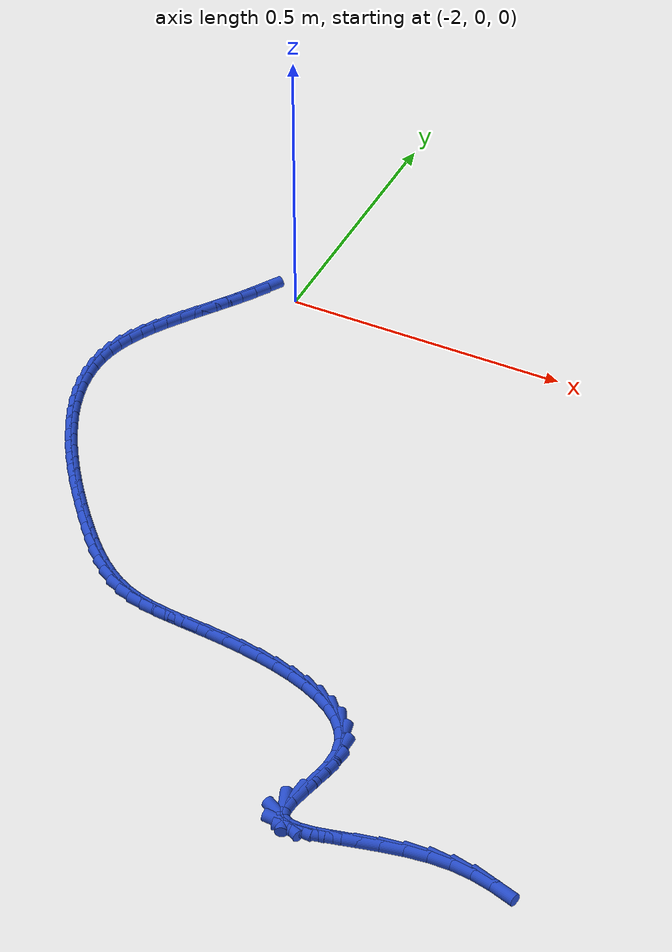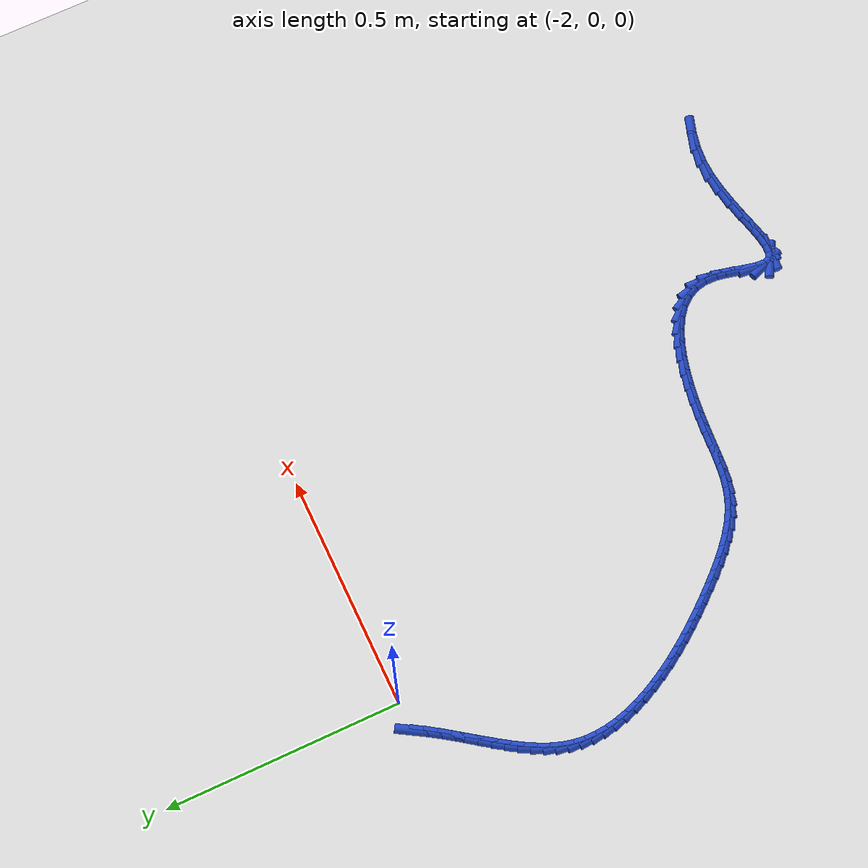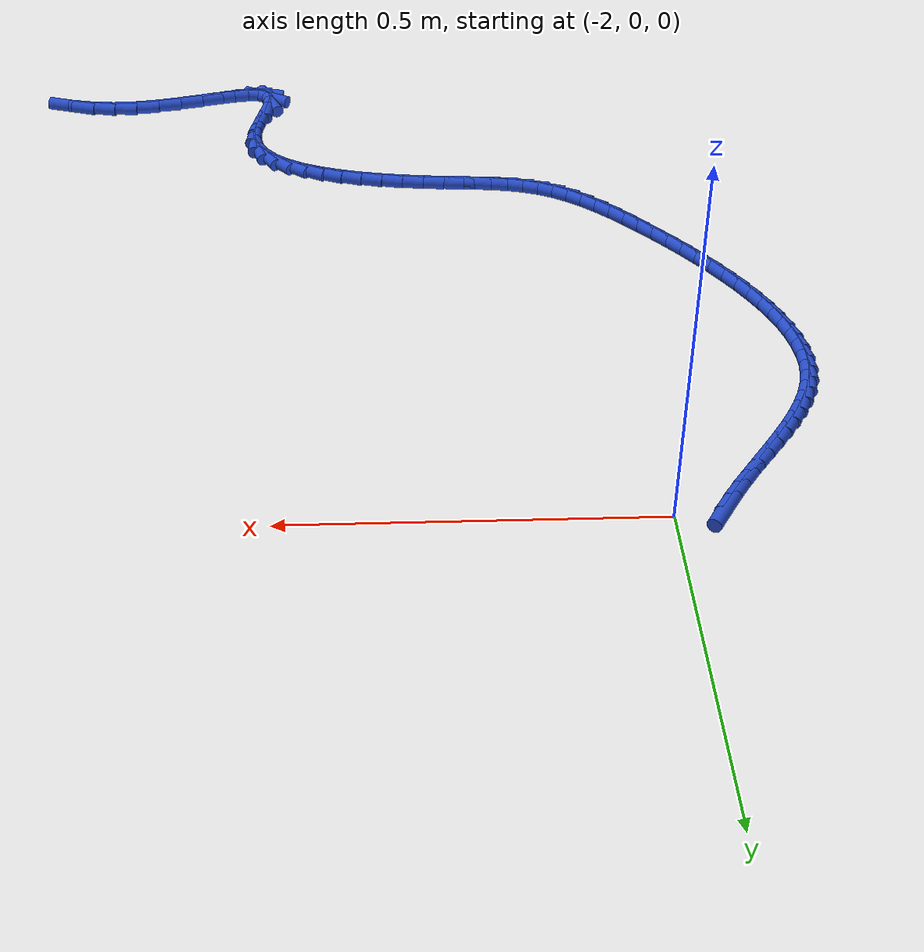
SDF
<sdf version="1.6">
 <world name="default">
  <model name="ground_plane">
   <static>1</static>
   <link name="link">
    <collision name="collision">
     <geometry><plane><normal>0 0 1</normal><size>100 100</size></plane></geometry>
     <surface><friction><ode><mu>100</mu><mu2>50</mu2></ode></friction></surface>
    </collision>
    <visual name="visual">
     <cast_shadows>0</cast_shadows>
     <geometry><plane><normal>0 0 1</normal><size>100 100</size></plane></geometry>
     <material>
      <script><uri>file://media/materials/scripts/gazebo.material</uri><name>Gazebo/WhiteGlow</name></script>
     </material>
    </visual>
   </link>
  </model>
  <model name="line">
   <link name="link_141">
    <pose>-2.0645207721327044 -0.004712723745425298 0.01 0 1.57 1.0263137775389735</pose>
    <collision name="collision">
     <geometry><cylinder><radius>0.01</radius><length>0.08</length></cylinder></geometry>
    </collision>
    <visual name="visual">
     <material>
      <script><name>Gazebo/Blue</name><uri>file://media/materials/scripts/gazebo.material</uri></script>
     </material>
     <geometry><cylinder><radius>0.01</radius><length>0.08</length></cylinder></geometry>
    </visual>
   </link>
   <link name="link_142">
    <pose>-2.0790939731737152 -0.028779207126630856 0.01 0 1.57 0.9900091788965728</pose>
    <collision name="collision">
     <geometry><cylinder><radius>0.01</radius><length>0.08</length></cylinder></geometry>
    </collision>
    <visual name="visual">
     <material>
      <script><name>Gazebo/Blue</name><uri>file://media/materials/scripts/gazebo.material</uri></script>
     </material>
     <geometry><cylinder><radius>0.01</radius><length>0.08</length></cylinder></geometry>
    </visual>
   </link>
   <link name="link_143">
    <pose>-2.09451189204711 -0.05227160158531137 0.01 0 1.57 0.9653043991538459</pose>
    <collision name="collision">
     <geometry><cylinder><radius>0.01</radius><length>0.08</length></cylinder></geometry>
    </collision>
    <visual name="visual">
     <material>
      <script><name>Gazebo/Blue</name><uri>file://media/materials/scripts/gazebo.material</uri></script>
     </material>
     <geometry><cylinder><radius>0.01</radius><length>0.08</length></cylinder></geometry>
    </visual>
   </link>
   <link name="link_144">
    <pose>-2.1104434789408644 -0.0752864870725746 0.01 0 1.57 0.9520963504807047</pose>
    <collision name="collision">
     <geometry><cylinder><radius>0.01</radius><length>0.08</length></cylinder></geometry>
    </collision>
    <visual name="visual">
     <material>
      <script><name>Gazebo/Blue</name><uri>file://media/materials/scripts/gazebo.material</uri></script>
     </material>
     <geometry><cylinder><radius>0.01</radius><length>0.08</length></cylinder></geometry>
    </visual>
   </link>
   <link name="link_145">
    <pose>-2.126557684042955 -0.09792044353952824 0.01 0 1.57 0.9504944550691583</pose>
    <collision name="collision">
     <geometry><cylinder><radius>0.01</radius><length>0.08</length></cylinder></geometry>
    </collision>
    <visual name="visual">
     <material>
      <script><name>Gazebo/Blue</name><uri>file://media/materials/scripts/gazebo.material</uri></script>
     </material>
     <geometry><cylinder><radius>0.01</radius><length>0.08</length></cylinder></geometry>
    </visual>
   </link>
   <link name="link_146">
    <pose>-2.1425234575413574 -0.12027005093728073 0.01 0 1.57 0.9608883282410815</pose>
    <collision name="collision">
     <geometry><cylinder><radius>0.01</radius><length>0.08</length></cylinder></geometry>
    </collision>
    <visual name="visual">
     <material>
      <script><name>Gazebo/Blue</name><uri>file://media/materials/scripts/gazebo.material</uri></script>
     </material>
     <geometry><cylinder><radius>0.01</radius><length>0.08</length></cylinder></geometry>
    </visual>
   </link>
   <link name="link_147">
    <pose>-2.1580097496240467 -0.1424318892169384 0.01 0 1.57 0.9839868110194508</pose>
    <collision name="collision">
     <geometry><cylinder><radius>0.01</radius><length>0.08</length></cylinder></geometry>
    </collision>
    <visual name="visual">
     <material>
      <script><name>Gazebo/Blue</name><uri>file://media/materials/scripts/gazebo.material</uri></script>
     </material>
     <geometry><cylinder><radius>0.01</radius><length>0.08</length></cylinder></geometry>
    </visual>
   </link>
   <link name="link_148">
    <pose>-2.1726855104790004 -0.16450253832960968 0.01 0 1.57 1.0208211946546906</pose>
    <collision name="collision">
     <geometry><cylinder><radius>0.01</radius><length>0.08</length></cylinder></geometry>
    </collision>
    <visual name="visual">
     <material>
      <script><name>Gazebo/Blue</name><uri>file://media/materials/scripts/gazebo.material</uri></script>
     </material>
     <geometry><cylinder><radius>0.01</radius><length>0.08</length></cylinder></geometry>
    </visual>
   </link>
   <link name="link_149">
    <pose>-2.1862196902941937 -0.1865785782264023 0.01 0 1.57 1.0726857452094924</pose>
    <collision name="collision">
     <geometry><cylinder><radius>0.01</radius><length>0.08</length></cylinder></geometry>
    </collision>
    <visual name="visual">
     <material>
      <script><name>Gazebo/Blue</name><uri>file://media/materials/scripts/gazebo.material</uri></script>
     </material>
     <geometry><cylinder><radius>0.01</radius><length>0.08</length></cylinder></geometry>
    </visual>
   </link>
   <link name="link_150">
    <pose>-2.1982812392576023 -0.20875658885842396 0.01 0 1.57 1.140962241953203</pose>
    <collision name="collision">
     <geometry><cylinder><radius>0.01</radius><length>0.08</length></cylinder></geometry>
    </collision>
    <visual name="visual">
     <material>
      <script><name>Gazebo/Blue</name><uri>file://media/materials/scripts/gazebo.material</uri></script>
     </material>
     <geometry><cylinder><radius>0.01</radius><length>0.08</length></cylinder></geometry>
    </visual>
   </link>
   <link name="link_151">
    <pose>-2.2085391075572023 -0.23113315017678238 0.01 0 1.57 1.2267515767455033</pose>
    <collision name="collision">
     <geometry><cylinder><radius>0.01</radius><length>0.08</length></cylinder></geometry>
    </collision>
    <visual name="visual">
     <material>
      <script><name>Gazebo/Blue</name><uri>file://media/materials/scripts/gazebo.material</uri></script>
     </material>
     <geometry><cylinder><radius>0.01</radius><length>0.08</length></cylinder></geometry>
    </visual>
   </link>
   <link name="link_152">
    <pose>-2.21666224538097 -0.2538048421325853 0.01 0 1.57 1.3302499300452797</pose>
    <collision name="collision">
     <geometry><cylinder><radius>0.01</radius><length>0.08</length></cylinder></geometry>
    </collision>
    <visual name="visual">
     <material>
      <script><name>Gazebo/Blue</name><uri>file://media/materials/scripts/gazebo.material</uri></script>
     </material>
     <geometry><cylinder><radius>0.01</radius><length>0.08</length></cylinder></geometry>
    </visual>
   </link>
   <link name="link_153">
    <pose>-2.222319603393628 -0.276868244514392 0.01 0 1.57 1.4461213831450492</pose>
    <collision name="collision">
     <geometry><cylinder><radius>0.01</radius><length>0.08</length></cylinder></geometry>
    </collision>
    <visual name="visual">
     <material>
      <script><name>Gazebo/Blue</name><uri>file://media/materials/scripts/gazebo.material</uri></script>
     </material>
     <geometry><cylinder><radius>0.01</radius><length>0.08</length></cylinder></geometry>
    </visual>
   </link>
   <link name="link_154">
    <pose>-2.2252674857395762 -0.30039015359786475 0.01 0 1.57 1.5571831872065396</pose>
    <collision name="collision">
     <geometry><cylinder><radius>0.01</radius><length>0.08</length></cylinder></geometry>
    </collision>
    <visual name="visual">
     <material>
      <script><name>Gazebo/Blue</name><uri>file://media/materials/scripts/gazebo.material</uri></script>
     </material>
     <geometry><cylinder><radius>0.01</radius><length>0.08</length></cylinder></geometry>
    </visual>
   </link>
   <link name="link_155">
    <pose>-2.2255933269958335 -0.32432446543366455 0.01 0 1.57 -1.4832588583455786</pose>
    <collision name="collision">
     <geometry><cylinder><radius>0.01</radius><length>0.08</length></cylinder></geometry>
    </collision>
    <visual name="visual">
     <material>
      <script><name>Gazebo/Blue</name><uri>file://media/materials/scripts/gazebo.material</uri></script>
     </material>
     <geometry><cylinder><radius>0.01</radius><length>0.08</length></cylinder></geometry>
    </visual>
   </link>
   <link name="link_156">
    <pose>-2.2234630102679604 -0.34859832873771074 0.01 0 1.57 -1.3925735281482696</pose>
    <collision name="collision">
     <geometry><cylinder><radius>0.01</radius><length>0.08</length></cylinder></geometry>
    </collision>
    <visual name="visual">
     <material>
      <script><name>Gazebo/Blue</name><uri>file://media/materials/scripts/gazebo.material</uri></script>
     </material>
     <geometry><cylinder><radius>0.01</radius><length>0.08</length></cylinder></geometry>
    </visual>
   </link>
   <link name="link_157">
    <pose>-2.2190424186615187 -0.3731388922259247 0.01 0 1.57 -1.312114643448786</pose>
    <collision name="collision">
     <geometry><cylinder><radius>0.01</radius><length>0.08</length></cylinder></geometry>
    </collision>
    <visual name="visual">
     <material>
      <script><name>Gazebo/Blue</name><uri>file://media/materials/scripts/gazebo.material</uri></script>
     </material>
     <geometry><cylinder><radius>0.01</radius><length>0.08</length></cylinder></geometry>
    </visual>
   </link>
   <link name="link_158">
    <pose>-2.212497435282071 -0.39787330461422776 0.01 0 1.57 -1.2411601969776707</pose>
    <collision name="collision">
     <geometry><cylinder><radius>0.01</radius><length>0.08</length></cylinder></geometry>
    </collision>
    <visual name="visual">
     <material>
      <script><name>Gazebo/Blue</name><uri>file://media/materials/scripts/gazebo.material</uri></script>
     </material>
     <geometry><cylinder><radius>0.01</radius><length>0.08</length></cylinder></geometry>
    </visual>
   </link>
   <link name="link_159">
    <pose>-2.2039939432351785 -0.4227287146185403 0.01 0 1.57 -1.17875800155336</pose>
    <collision name="collision">
     <geometry><cylinder><radius>0.01</radius><length>0.08</length></cylinder></geometry>
    </collision>
    <visual name="visual">
     <material>
      <script><name>Gazebo/Blue</name><uri>file://media/materials/scripts/gazebo.material</uri></script>
     </material>
     <geometry><cylinder><radius>0.01</radius><length>0.08</length></cylinder></geometry>
    </visual>
   </link>
   <link name="link_160">
    <pose>-2.1936978256264026 -0.4476322709547834 0.01 0 1.57 -1.123896857026433</pose>
    <collision name="collision">
     <geometry><cylinder><radius>0.01</radius><length>0.08</length></cylinder></geometry>
    </collision>
    <visual name="visual">
     <material>
      <script><name>Gazebo/Blue</name><uri>file://media/materials/scripts/gazebo.material</uri></script>
     </material>
     <geometry><cylinder><radius>0.01</radius><length>0.08</length></cylinder></geometry>
    </visual>
   </link>
   <link name="link_161">
    <pose>-2.181774965561304 -0.47251112233887793 0.01 0 1.57 -1.075606202311399</pose>
    <collision name="collision">
     <geometry><cylinder><radius>0.01</radius><length>0.08</length></cylinder></geometry>
    </collision>
    <visual name="visual">
     <material>
      <script><name>Gazebo/Blue</name><uri>file://media/materials/scripts/gazebo.material</uri></script>
     </material>
     <geometry><cylinder><radius>0.01</radius><length>0.08</length></cylinder></geometry>
    </visual>
   </link>
   <link name="link_162">
    <pose>-2.168391246145446 -0.49729241748674463 0.01 0 1.57 -1.0330052434599395</pose>
    <collision name="collision">
     <geometry><cylinder><radius>0.01</radius><length>0.08</length></cylinder></geometry>
    </collision>
    <visual name="visual">
     <material>
      <script><name>Gazebo/Blue</name><uri>file://media/materials/scripts/gazebo.material</uri></script>
     </material>
     <geometry><cylinder><radius>0.01</radius><length>0.08</length></cylinder></geometry>
    </visual>
   </link>
   <link name="link_163">
    <pose>-2.1537125504843884 -0.5219033051143044 0.01 0 1.57 -0.9953208609447015</pose>
    <collision name="collision">
     <geometry><cylinder><radius>0.01</radius><length>0.08</length></cylinder></geometry>
    </collision>
    <visual name="visual">
     <material>
      <script><name>Gazebo/Blue</name><uri>file://media/materials/scripts/gazebo.material</uri></script>
     </material>
     <geometry><cylinder><radius>0.01</radius><length>0.08</length></cylinder></geometry>
    </visual>
   </link>
   <link name="link_164">
    <pose>-2.1379047616836933 -0.5462709339374788 0.01 0 1.57 -0.9618882443229928</pose>
    <collision name="collision">
     <geometry><cylinder><radius>0.01</radius><length>0.08</length></cylinder></geometry>
    </collision>
    <visual name="visual">
     <material>
      <script><name>Gazebo/Blue</name><uri>file://media/materials/scripts/gazebo.material</uri></script>
     </material>
     <geometry><cylinder><radius>0.01</radius><length>0.08</length></cylinder></geometry>
    </visual>
   </link>
   <link name="link_165">
    <pose>-2.121133762848923 -0.5703224526721875 0.01 0 1.57 -0.9321431188851543</pose>
    <collision name="collision">
     <geometry><cylinder><radius>0.01</radius><length>0.08</length></cylinder></geometry>
    </collision>
    <visual name="visual">
     <material>
      <script><name>Gazebo/Blue</name><uri>file://media/materials/scripts/gazebo.material</uri></script>
     </material>
     <geometry><cylinder><radius>0.01</radius><length>0.08</length></cylinder></geometry>
    </visual>
   </link>
   <link name="link_166">
    <pose>-2.103565437085638 -0.5939850100343516 0.01 0 1.57 -0.9056107299594885</pose>
    <collision name="collision">
     <geometry><cylinder><radius>0.01</radius><length>0.08</length></cylinder></geometry>
    </collision>
    <visual name="visual">
     <material>
      <script><name>Gazebo/Blue</name><uri>file://media/materials/scripts/gazebo.material</uri></script>
     </material>
     <geometry><cylinder><radius>0.01</radius><length>0.08</length></cylinder></geometry>
    </visual>
   </link>
   <link name="link_167">
    <pose>-2.0853656674994006 -0.6171857547398922 0.01 0 1.57 -0.8818943862959129</pose>
    <collision name="collision">
     <geometry><cylinder><radius>0.01</radius><length>0.08</length></cylinder></geometry>
    </collision>
    <visual name="visual">
     <material>
      <script><name>Gazebo/Blue</name><uri>file://media/materials/scripts/gazebo.material</uri></script>
     </material>
     <geometry><cylinder><radius>0.01</radius><length>0.08</length></cylinder></geometry>
    </visual>
   </link>
   <link name="link_168">
    <pose>-2.0667003371957717 -0.6398518355047301 0.01 0 1.57 -0.8606646722086949</pose>
    <collision name="collision">
     <geometry><cylinder><radius>0.01</radius><length>0.08</length></cylinder></geometry>
    </collision>
    <visual name="visual">
     <material>
      <script><name>Gazebo/Blue</name><uri>file://media/materials/scripts/gazebo.material</uri></script>
     </material>
     <geometry><cylinder><radius>0.01</radius><length>0.08</length></cylinder></geometry>
    </visual>
   </link>
   <link name="link_169">
    <pose>-2.0477353227114805 -0.6619103950886741 0.01 0 1.57 -0.8391684796525632</pose>
    <collision name="collision">
     <geometry><cylinder><radius>0.01</radius><length>0.08</length></cylinder></geometry>
    </collision>
    <visual name="visual">
     <material>
      <script><name>Gazebo/Blue</name><uri>file://media/materials/scripts/gazebo.material</uri></script>
     </material>
     <geometry><cylinder><radius>0.01</radius><length>0.08</length></cylinder></geometry>
    </visual>
   </link>
   <link name="link_170">
    <pose>-2.0285837750055866 -0.6832407687555265 0.01 0 1.57 -0.8083772725539128</pose>
    <collision name="collision">
     <geometry><cylinder><radius>0.01</radius><length>0.08</length></cylinder></geometry>
    </collision>
    <visual name="visual">
     <material>
      <script><name>Gazebo/Blue</name><uri>file://media/materials/scripts/gazebo.material</uri></script>
     </material>
     <geometry><cylinder><radius>0.01</radius><length>0.08</length></cylinder></geometry>
    </visual>
   </link>
   <link name="link_171">
    <pose>-2.0091786263391267 -0.7035588833235666 0.01 0 1.57 -0.7653397573866969</pose>
    <collision name="collision">
     <geometry><cylinder><radius>0.01</radius><length>0.08</length></cylinder></geometry>
    </collision>
    <visual name="visual">
     <material>
      <script><name>Gazebo/Blue</name><uri>file://media/materials/scripts/gazebo.material</uri></script>
     </material>
     <geometry><cylinder><radius>0.01</radius><length>0.08</length></cylinder></geometry>
    </visual>
   </link>
   <link name="link_172">
    <pose>-1.9894143365529322 -0.7225457817813163 0.01 0 1.57 -0.708558082143419</pose>
    <collision name="collision">
     <geometry><cylinder><radius>0.01</radius><length>0.08</length></cylinder></geometry>
    </collision>
    <visual name="visual">
     <material>
      <script><name>Gazebo/Blue</name><uri>file://media/materials/scripts/gazebo.material</uri></script>
     </material>
     <geometry><cylinder><radius>0.01</radius><length>0.08</length></cylinder></geometry>
    </visual>
   </link>
   <link name="link_173">
    <pose>-1.9691853654878337 -0.7398825071172979 0.01 0 1.57 -0.6363303122517644</pose>
    <collision name="collision">
     <geometry><cylinder><radius>0.01</radius><length>0.08</length></cylinder></geometry>
    </collision>
    <visual name="visual">
     <material>
      <script><name>Gazebo/Blue</name><uri>file://media/materials/scripts/gazebo.material</uri></script>
     </material>
     <geometry><cylinder><radius>0.01</radius><length>0.08</length></cylinder></geometry>
    </visual>
   </link>
   <link name="link_174">
    <pose>-1.9483861729846645 -0.7552501023200318 0.01 0 1.57 -0.5470537125419875</pose>
    <collision name="collision">
     <geometry><cylinder><radius>0.01</radius><length>0.08</length></cylinder></geometry>
    </collision>
    <visual name="visual">
     <material>
      <script><name>Gazebo/Blue</name><uri>file://media/materials/scripts/gazebo.material</uri></script>
     </material>
     <geometry><cylinder><radius>0.01</radius><length>0.08</length></cylinder></geometry>
    </visual>
   </link>
   <link name="link_175">
    <pose>-1.926911218884256 -0.7683296103780404 0.01 0 1.57 -0.4398032861025741</pose>
    <collision name="collision">
     <geometry><cylinder><radius>0.01</radius><length>0.08</length></cylinder></geometry>
    </collision>
    <visual name="visual">
     <material>
      <script><name>Gazebo/Blue</name><uri>file://media/materials/scripts/gazebo.material</uri></script>
     </material>
     <geometry><cylinder><radius>0.01</radius><length>0.08</length></cylinder></geometry>
    </visual>
   </link>
   <link name="link_176">
    <pose>-1.9046549630274616 -0.7788020742854593 0.01 0 1.57 -0.3212735704604194</pose>
    <collision name="collision">
     <geometry><cylinder><radius>0.01</radius><length>0.08</length></cylinder></geometry>
    </collision>
    <visual name="visual">
     <material>
      <script><name>Gazebo/Blue</name><uri>file://media/materials/scripts/gazebo.material</uri></script>
     </material>
     <geometry><cylinder><radius>0.01</radius><length>0.08</length></cylinder></geometry>
    </visual>
   </link>
   <link name="link_177">
    <pose>-1.8815124460394719 -0.7865039834426968 0.01 0 1.57 -0.2194954004012801</pose>
    <collision name="collision">
     <geometry><cylinder><radius>0.01</radius><length>0.08</length></cylinder></geometry>
    </collision>
    <visual name="visual">
     <material>
      <script><name>Gazebo/Blue</name><uri>file://media/materials/scripts/gazebo.material</uri></script>
     </material>
     <geometry><cylinder><radius>0.01</radius><length>0.08</length></cylinder></geometry>
    </visual>
   </link>
   <link name="link_178">
    <pose>-1.8573810086842644 -0.7918874573279099 0.01 0 1.57 -0.14447350369644923</pose>
    <collision name="collision">
     <geometry><cylinder><radius>0.01</radius><length>0.08</length></cylinder></geometry>
    </collision>
    <visual name="visual">
     <material>
      <script><name>Gazebo/Blue</name><uri>file://media/materials/scripts/gazebo.material</uri></script>
     </material>
     <geometry><cylinder><radius>0.01</radius><length>0.08</length></cylinder></geometry>
    </visual>
   </link>
   <link name="link_179">
    <pose>-1.8321585610676738 -0.7955569992561794 0.01 0 1.57 -0.09661516628943616</pose>
    <collision name="collision">
     <geometry><cylinder><radius>0.01</radius><length>0.08</length></cylinder></geometry>
    </collision>
    <visual name="visual">
     <material>
      <script><name>Gazebo/Blue</name><uri>file://media/materials/scripts/gazebo.material</uri></script>
     </material>
     <geometry><cylinder><radius>0.01</radius><length>0.08</length></cylinder></geometry>
    </visual>
   </link>
   <link name="link_180">
    <pose>-1.8057430132955377 -0.798117112542586 0.01 0 1.57 -0.07403022367266142</pose>
    <collision name="collision">
     <geometry><cylinder><radius>0.01</radius><length>0.08</length></cylinder></geometry>
    </collision>
    <visual name="visual">
     <material>
      <script><name>Gazebo/Blue</name><uri>file://media/materials/scripts/gazebo.material</uri></script>
     </material>
     <geometry><cylinder><radius>0.01</radius><length>0.08</length></cylinder></geometry>
    </visual>
   </link>
   <link name="link_181">
    <pose>-1.7780322754736906 -0.8001723005022101 0.01 0 1.57 -0.07389176645075153</pose>
    <collision name="collision">
     <geometry><cylinder><radius>0.01</radius><length>0.08</length></cylinder></geometry>
    </collision>
    <visual name="visual">
     <material>
      <script><name>Gazebo/Blue</name><uri>file://media/materials/scripts/gazebo.material</uri></script>
     </material>
     <geometry><cylinder><radius>0.01</radius><length>0.08</length></cylinder></geometry>
    </visual>
   </link>
   <link name="link_182">
    <pose>-1.7489242577079707 -0.8023270664501321 0.01 0 1.57 -0.09240864035110992</pose>
    <collision name="collision">
     <geometry><cylinder><radius>0.01</radius><length>0.08</length></cylinder></geometry>
    </collision>
    <visual name="visual">
     <material>
      <script><name>Gazebo/Blue</name><uri>file://media/materials/scripts/gazebo.material</uri></script>
     </material>
     <geometry><cylinder><radius>0.01</radius><length>0.08</length></cylinder></geometry>
    </visual>
   </link>
   <link name="link_183">
    <pose>-1.7183672336357045 -0.8051588646688411 0.01 0 1.57 -0.12086151870133048</pose>
    <collision name="collision">
     <geometry><cylinder><radius>0.01</radius><length>0.08</length></cylinder></geometry>
    </collision>
    <visual name="visual">
     <material>
      <script><name>Gazebo/Blue</name><uri>file://media/materials/scripts/gazebo.material</uri></script>
     </material>
     <geometry><cylinder><radius>0.01</radius><length>0.08</length></cylinder></geometry>
    </visual>
   </link>
   <link name="link_184">
    <pose>-1.6867732606783803 -0.8089960624065885 0.01 0 1.57 -0.15626522233583845</pose>
    <collision name="collision">
     <geometry><cylinder><radius>0.01</radius><length>0.08</length></cylinder></geometry>
    </collision>
    <visual name="visual">
     <material>
      <script><name>Gazebo/Blue</name><uri>file://media/materials/scripts/gazebo.material</uri></script>
     </material>
     <geometry><cylinder><radius>0.01</radius><length>0.08</length></cylinder></geometry>
    </visual>
   </link>
   <link name="link_185">
    <pose>-1.6548044234602781 -0.8140327433584934 0.01 0 1.57 -0.20021996618317564</pose>
    <collision name="collision">
     <geometry><cylinder><radius>0.01</radius><length>0.08</length></cylinder></geometry>
    </collision>
    <visual name="visual">
     <material>
      <script><name>Gazebo/Blue</name><uri>file://media/materials/scripts/gazebo.material</uri></script>
     </material>
     <geometry><cylinder><radius>0.01</radius><length>0.08</length></cylinder></geometry>
    </visual>
   </link>
   <link name="link_186">
    <pose>-1.6231252326027628 -0.8204616882754154 0.01 0 1.57 -0.2551447075034627</pose>
    <collision name="collision">
     <geometry><cylinder><radius>0.01</radius><length>0.08</length></cylinder></geometry>
    </collision>
    <visual name="visual">
     <material>
      <script><name>Gazebo/Blue</name><uri>file://media/materials/scripts/gazebo.material</uri></script>
     </material>
     <geometry><cylinder><radius>0.01</radius><length>0.08</length></cylinder></geometry>
    </visual>
   </link>
   <link name="link_187">
    <pose>-1.5924001987272005 -0.8284756779082142 0.01 0 1.57 -0.32452138958797194</pose>
    <collision name="collision">
     <geometry><cylinder><radius>0.01</radius><length>0.08</length></cylinder></geometry>
    </collision>
    <visual name="visual">
     <material>
      <script><name>Gazebo/Blue</name><uri>file://media/materials/scripts/gazebo.material</uri></script>
     </material>
     <geometry><cylinder><radius>0.01</radius><length>0.08</length></cylinder></geometry>
    </visual>
   </link>
   <link name="link_188">
    <pose>-1.5632938324549552 -0.83826749300775 0.01 0 1.57 -0.4132636534164171</pose>
    <collision name="collision">
     <geometry><cylinder><radius>0.01</radius><length>0.08</length></cylinder></geometry>
    </collision>
    <visual name="visual">
     <material>
      <script><name>Gazebo/Blue</name><uri>file://media/materials/scripts/gazebo.material</uri></script>
     </material>
     <geometry><cylinder><radius>0.01</radius><length>0.08</length></cylinder></geometry>
    </visual>
   </link>
   <link name="link_189">
    <pose>-1.5364706444073928 -0.8500299143248823 0.01 0 1.57 -0.5280255014548816</pose>
    <collision name="collision">
     <geometry><cylinder><radius>0.01</radius><length>0.08</length></cylinder></geometry>
    </collision>
    <visual name="visual">
     <material>
      <script><name>Gazebo/Blue</name><uri>file://media/materials/scripts/gazebo.material</uri></script>
     </material>
     <geometry><cylinder><radius>0.01</radius><length>0.08</length></cylinder></geometry>
    </visual>
   </link>
   <link name="link_190">
    <pose>-1.5125951452058766 -0.8639557226104715 0.01 0 1.57 -0.67688388326793</pose>
    <collision name="collision">
     <geometry><cylinder><radius>0.01</radius><length>0.08</length></cylinder></geometry>
    </collision>
    <visual name="visual">
     <material>
      <script><name>Gazebo/Blue</name><uri>file://media/materials/scripts/gazebo.material</uri></script>
     </material>
     <geometry><cylinder><radius>0.01</radius><length>0.08</length></cylinder></geometry>
    </visual>
   </link>
   <link name="link_191">
    <pose>-1.4923318454717738 -0.8802376986153767 0.01 0 1.57 -0.8669098024738221</pose>
    <collision name="collision">
     <geometry><cylinder><radius>0.01</radius><length>0.08</length></cylinder></geometry>
    </collision>
    <visual name="visual">
     <material>
      <script><name>Gazebo/Blue</name><uri>file://media/materials/scripts/gazebo.material</uri></script>
     </material>
     <geometry><cylinder><radius>0.01</radius><length>0.08</length></cylinder></geometry>
    </visual>
   </link>
   <link name="link_192">
    <pose>-1.4763452558264492 -0.8990686230904581 0.01 0 1.57 -1.097588615840536</pose>
    <collision name="collision">
     <geometry><cylinder><radius>0.01</radius><length>0.08</length></cylinder></geometry>
    </collision>
    <visual name="visual">
     <material>
      <script><name>Gazebo/Blue</name><uri>file://media/materials/scripts/gazebo.material</uri></script>
     </material>
     <geometry><cylinder><radius>0.01</radius><length>0.08</length></cylinder></geometry>
    </visual>
   </link>
   <link name="link_193">
    <pose>-1.4652998868912668 -0.9206412767865753 0.01 0 1.57 -1.3523762055369162</pose>
    <collision name="collision">
     <geometry><cylinder><radius>0.01</radius><length>0.08</length></cylinder></geometry>
    </collision>
    <visual name="visual">
     <material>
      <script><name>Gazebo/Blue</name><uri>file://media/materials/scripts/gazebo.material</uri></script>
     </material>
     <geometry><cylinder><radius>0.01</radius><length>0.08</length></cylinder></geometry>
    </visual>
   </link>
   <link name="link_194">
    <pose>-1.4598602492875923 -0.9451484404545885 0.01 0 1.57 1.5456508606296198</pose>
    <collision name="collision">
     <geometry><cylinder><radius>0.01</radius><length>0.08</length></cylinder></geometry>
    </collision>
    <visual name="visual">
     <material>
      <script><name>Gazebo/Blue</name><uri>file://media/materials/scripts/gazebo.material</uri></script>
     </material>
     <geometry><cylinder><radius>0.01</radius><length>0.08</length></cylinder></geometry>
    </visual>
   </link>
   <link name="link_195">
    <pose>-1.4605528840791333 -0.9726877510319409 0.01 0 1.57 1.3895235482124935</pose>
    <collision name="collision">
     <geometry><cylinder><radius>0.01</radius><length>0.08</length></cylinder></geometry>
    </collision>
    <visual name="visual">
     <material>
      <script><name>Gazebo/Blue</name><uri>file://media/materials/scripts/gazebo.material</uri></script>
     </material>
     <geometry><cylinder><radius>0.01</radius><length>0.08</length></cylinder></geometry>
    </visual>
   </link>
   <link name="link_196">
    <pose>-1.4659237265852396 -1.001991019642089 0.01 0 1.57 1.3285022925554255</pose>
    <collision name="collision">
     <geometry><cylinder><radius>0.01</radius><length>0.08</length></cylinder></geometry>
    </collision>
    <visual name="visual">
     <material>
      <script><name>Gazebo/Blue</name><uri>file://media/materials/scripts/gazebo.material</uri></script>
     </material>
     <geometry><cylinder><radius>0.01</radius><length>0.08</length></cylinder></geometry>
    </visual>
   </link>
   <link name="link_197">
    <pose>-1.4730358053367745 -1.03076744481776 0.01 0 1.57 1.3478175550250657</pose>
    <collision name="collision">
     <geometry><cylinder><radius>0.01</radius><length>0.08</length></cylinder></geometry>
    </collision>
    <visual name="visual">
     <material>
      <script><name>Gazebo/Blue</name><uri>file://media/materials/scripts/gazebo.material</uri></script>
     </material>
     <geometry><cylinder><radius>0.01</radius><length>0.08</length></cylinder></geometry>
    </visual>
   </link>
   <link name="link_198">
    <pose>-1.4789163397719591 -1.0567015311397194 0.01 0 1.57 1.4902915847159437</pose>
    <collision name="collision">
     <geometry><cylinder><radius>0.01</radius><length>0.08</length></cylinder></geometry>
    </collision>
    <visual name="visual">
     <material>
      <script><name>Gazebo/Blue</name><uri>file://media/materials/scripts/gazebo.material</uri></script>
     </material>
     <geometry><cylinder><radius>0.01</radius><length>0.08</length></cylinder></geometry>
    </visual>
   </link>
   <link name="link_199">
    <pose>-1.4805925493290137 -1.077477783188733 0.01 0 1.57 -1.2084230815790065</pose>
    <collision name="collision">
     <geometry><cylinder><radius>0.01</radius><length>0.08</length></cylinder></geometry>
    </collision>
    <visual name="visual">
     <material>
      <script><name>Gazebo/Blue</name><uri>file://media/materials/scripts/gazebo.material</uri></script>
     </material>
     <geometry><cylinder><radius>0.01</radius><length>0.08</length></cylinder></geometry>
    </visual>
   </link>
   <link name="link_200">
    <pose>-1.4754296262460052 -1.0910961478018786 0.01 0 1.57 -0.5059440537226036</pose>
    <collision name="collision">
     <geometry><cylinder><radius>0.01</radius><length>0.08</length></cylinder></geometry>
    </collision>
    <visual name="visual">
     <material>
      <script><name>Gazebo/Blue</name><uri>file://media/materials/scripts/gazebo.material</uri></script>
     </material>
     <geometry><cylinder><radius>0.01</radius><length>0.08</length></cylinder></geometry>
    </visual>
   </link>
   <link name="link_201">
    <pose>-1.4632461124650569 -1.0978463719614773 0.01 0 1.57 -0.06449516563663872</pose>
    <collision name="collision">
     <geometry><cylinder><radius>0.01</radius><length>0.08</length></cylinder></geometry>
    </collision>
    <visual name="visual">
     <material>
      <script><name>Gazebo/Blue</name><uri>file://media/materials/scripts/gazebo.material</uri></script>
     </material>
     <geometry><cylinder><radius>0.01</radius><length>0.08</length></cylinder></geometry>
    </visual>
   </link>
   <link name="link_202">
    <pose>-1.4449429811702028 -1.0990284749362833 0.01 0 1.57 0.13029322564045612</pose>
    <collision name="collision">
     <geometry><cylinder><radius>0.01</radius><length>0.08</length></cylinder></geometry>
    </collision>
    <visual name="visual">
     <material>
      <script><name>Gazebo/Blue</name><uri>file://media/materials/scripts/gazebo.material</uri></script>
     </material>
     <geometry><cylinder><radius>0.01</radius><length>0.08</length></cylinder></geometry>
    </visual>
   </link>
   <link name="link_203">
    <pose>-1.4214259540596843 -1.0959469079553636 0.01 0 1.57 0.2137802605981853</pose>
    <collision name="collision">
     <geometry><cylinder><radius>0.01</radius><length>0.08</length></cylinder></geometry>
    </collision>
    <visual name="visual">
     <material>
      <script><name>Gazebo/Blue</name><uri>file://media/materials/scripts/gazebo.material</uri></script>
     </material>
     <geometry><cylinder><radius>0.01</radius><length>0.08</length></cylinder></geometry>
    </visual>
   </link>
   <link name="link_204">
    <pose>-1.3936007528317451 -1.0899061222477873 0.01 0 1.57 0.24161954975778</pose>
    <collision name="collision">
     <geometry><cylinder><radius>0.01</radius><length>0.08</length></cylinder></geometry>
    </collision>
    <visual name="visual">
     <material>
      <script><name>Gazebo/Blue</name><uri>file://media/materials/scripts/gazebo.material</uri></script>
     </material>
     <geometry><cylinder><radius>0.01</radius><length>0.08</length></cylinder></geometry>
    </visual>
   </link>
   <link name="link_205">
    <pose>-1.3623730991846268 -1.0822105690426223 0.01 0 1.57 0.23419924473007886</pose>
    <collision name="collision">
     <geometry><cylinder><radius>0.01</radius><length>0.08</length></cylinder></geometry>
    </collision>
    <visual name="visual">
     <material>
      <script><name>Gazebo/Blue</name><uri>file://media/materials/scripts/gazebo.material</uri></script>
     </material>
     <geometry><cylinder><radius>0.01</radius><length>0.08</length></cylinder></geometry>
    </visual>
   </link>
   <link name="link_206">
    <pose>-1.3286487148165722 -1.0741646995689367 0.01 0 1.57 0.19817565544990073</pose>
    <collision name="collision">
     <geometry><cylinder><radius>0.01</radius><length>0.08</length></cylinder></geometry>
    </collision>
    <visual name="visual">
     <material>
      <script><name>Gazebo/Blue</name><uri>file://media/materials/scripts/gazebo.material</uri></script>
     </material>
     <geometry><cylinder><radius>0.01</radius><length>0.08</length></cylinder></geometry>
    </visual>
   </link>
   <link name="link_207">
    <pose>-1.293333321425824 -1.067072965055799 0.01 0 1.57 0.13345363249790948</pose>
    <collision name="collision">
     <geometry><cylinder><radius>0.01</radius><length>0.08</length></cylinder></geometry>
    </collision>
    <visual name="visual">
     <material>
      <script><name>Gazebo/Blue</name><uri>file://media/materials/scripts/gazebo.material</uri></script>
     </material>
     <geometry><cylinder><radius>0.01</radius><length>0.08</length></cylinder></geometry>
    </visual>
   </link>
   <link name="link_208">
    <pose>-1.2573326407106238 -1.0622398167322773 0.01 0 1.57 0.035483602806569425</pose>
    <collision name="collision">
     <geometry><cylinder><radius>0.01</radius><length>0.08</length></cylinder></geometry>
    </collision>
    <visual name="visual">
     <material>
      <script><name>Gazebo/Blue</name><uri>file://media/materials/scripts/gazebo.material</uri></script>
     </material>
     <geometry><cylinder><radius>0.01</radius><length>0.08</length></cylinder></geometry>
    </visual>
   </link>
   <link name="link_209">
    <pose>-1.2215523821865395 -1.060969671131531 0.01 0 1.57 -0.09084979328526278</pose>
    <collision name="collision">
     <geometry><cylinder><radius>0.01</radius><length>0.08</length></cylinder></geometry>
    </collision>
    <visual name="visual">
     <material>
      <script><name>Gazebo/Blue</name><uri>file://media/materials/scripts/gazebo.material</uri></script>
     </material>
     <geometry><cylinder><radius>0.01</radius><length>0.08</length></cylinder></geometry>
    </visual>
   </link>
   <link name="link_210">
    <pose>-1.1867484587559305 -1.0641403283864097 0.01 0 1.57 -0.2054002906676755</pose>
    <collision name="collision">
     <geometry><cylinder><radius>0.01</radius><length>0.08</length></cylinder></geometry>
    </collision>
    <visual name="visual">
     <material>
      <script><name>Gazebo/Blue</name><uri>file://media/materials/scripts/gazebo.material</uri></script>
     </material>
     <geometry><cylinder><radius>0.01</radius><length>0.08</length></cylinder></geometry>
    </visual>
   </link>
   <link name="link_211">
    <pose>-1.1531535513684985 -1.071139439237235 0.01 0 1.57 -0.2974121727399698</pose>
    <collision name="collision">
     <geometry><cylinder><radius>0.01</radius><length>0.08</length></cylinder></geometry>
    </collision>
    <visual name="visual">
     <material>
      <script><name>Gazebo/Blue</name><uri>file://media/materials/scripts/gazebo.material</uri></script>
     </material>
     <geometry><cylinder><radius>0.01</radius><length>0.08</length></cylinder></geometry>
    </visual>
   </link>
  </model>
 </world>
</sdf>
